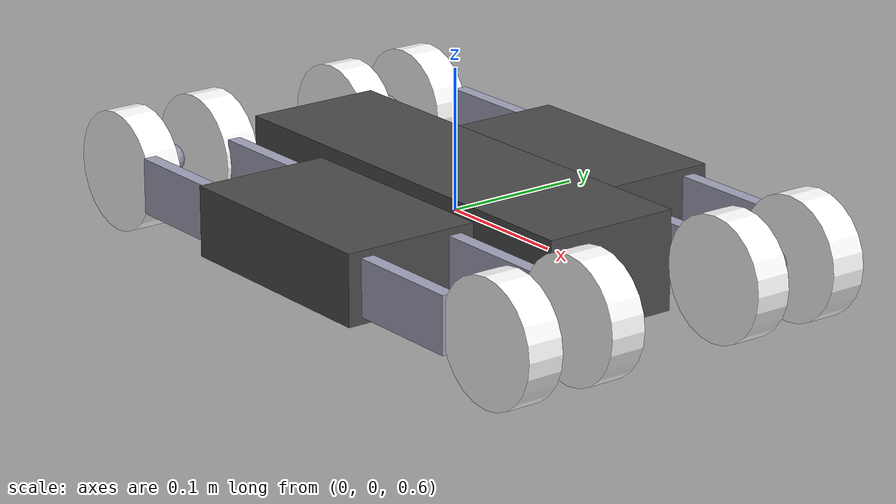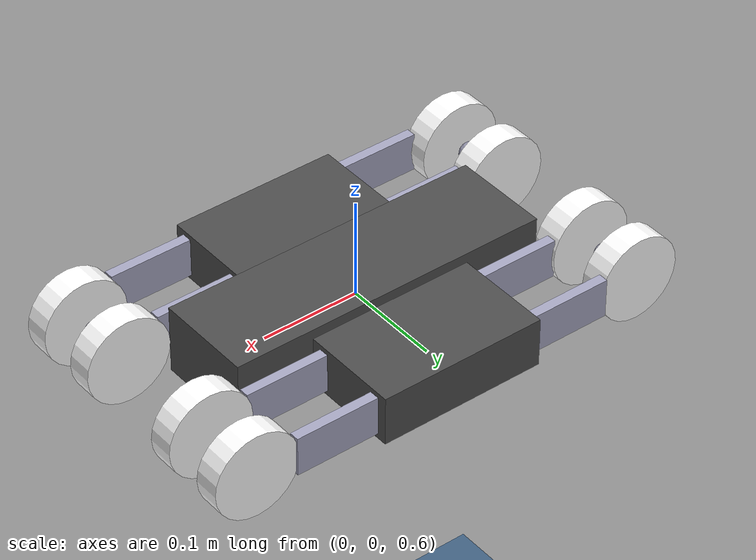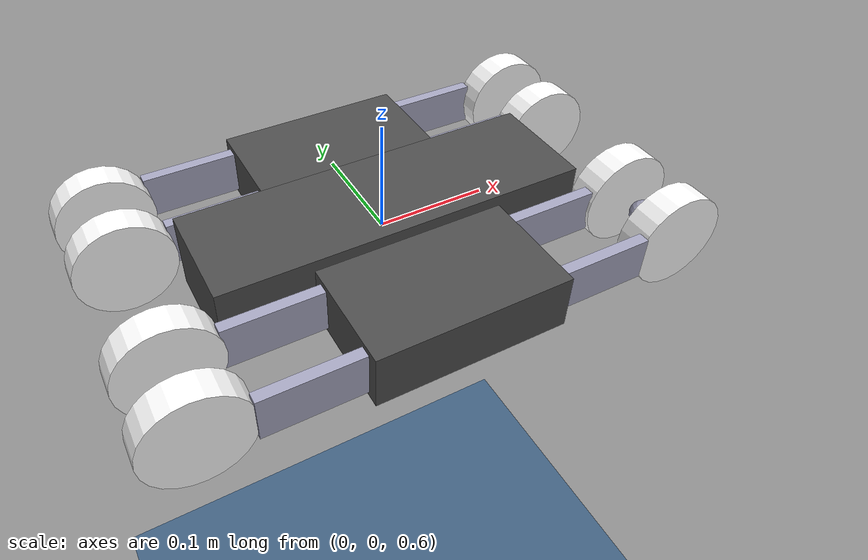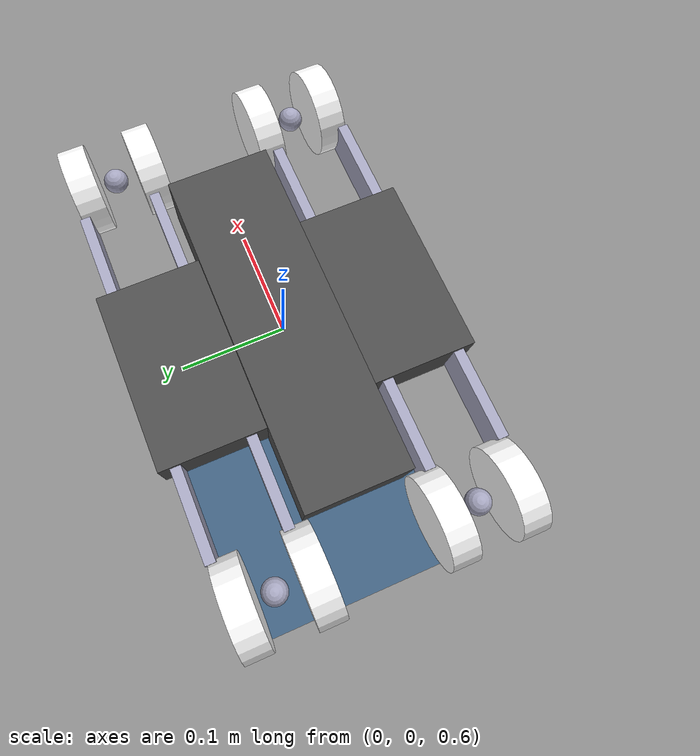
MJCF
<mujoco model='minitaur_run'>

    <option gravity='0 0 -9.81' timestep="0.005"/>

    <compiler angle='radian' />
    <size njmax='500' nconmax='100'/>

    <default>
    </default>

    <asset>
        <texture builtin="gradient" height="100" rgb1="1 1 1" rgb2="0.9 0.9 0.9" type="skybox" width="100"/>

        <texture name="texplane" type="2d" builtin="checker" rgb1=".4 .6 .8" rgb2=".1 0.15 0.2"
            width="512" height="512"/>
        <material name='MatPlane' reflectance='0.3' texture="texplane" texrepeat="1 1" texuniform="true"/>
    </asset>

    <worldbody>
        <light cutoff="100" diffuse="1 1 1" dir="-0 0 -1.3" directional="true" exponent="1" pos="0 0 1.3" specular=".1 .1 .1" castshadow="false"/>

        <geom name='floor' pos='0 0 0' size='20 10 .01' type='plane' material="MatPlane" condim='3' friction='1.6 0.005 0.0001'/>

        <include file='minitaur.xml'/>
    </worldbody>

    <actuator>
          <position kp='2' joint="motor_front_leftL_joint"   ctrlrange='-0.2 0.2' name="motor_front_leftL_joint"/>
          <position kp='2' joint="motor_back_leftL_joint"    ctrlrange='-0.2 0.2' name="motor_back_leftL_joint"/>
          <position kp='2' joint="motor_front_rightR_joint"  ctrlrange='-0.2 0.2' name="motor_front_rightR_joint"/>
          <position kp='2' joint="motor_back_rightR_joint"   ctrlrange='-0.2 0.2' name="motor_back_rightR_joint"/>

          <position kp='120' gear='1' joint="motor_front_leftL_extension"   ctrlrange='0.12 0.2' name="motor_front_leftL_extension"/>
          <position kp='120' gear='1' joint="motor_back_leftL_extension"    ctrlrange='0.12 0.2' name="motor_back_leftL_extension" />
          <position kp='120' gear='1' joint="motor_front_rightR_extension"  ctrlrange='0.12 0.2' name="motor_front_rightR_extension"/>
          <position kp='120' gear='1' joint="motor_back_rightR_extension"   ctrlrange='0.12 0.2' name="motor_back_rightR_extension"/>

    </actuator>

</mujoco>

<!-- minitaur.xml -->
<mujocoinclude>
    <body name="base_chassis_link" pos="0 0 0.6">
        <joint name="object:joint" type="free" damping="0.10"></joint>

        <inertial pos="0 0 0" mass="3.3" diaginertia="0.006837 0.027262 0.02987" />
        <geom size="0.165 0.05 0.035" type="box" rgba="0.3 0.3 0.3 1" />
        <geom size="0.085 0.05 0.025" pos="0 0.1 0" type="box" rgba="0.3 0.3 0.3 1" />
        <geom size="0.085 0.05 0.025" pos="0 -0.1 0" type="box" rgba="0.3 0.3 0.3 1" />

        <body name="chassis_right" pos="0 -0.1 0" quat="1 0 0 0">
            <inertial pos='0 0 0' mass='1.32' diaginertia='0.004147 0.040913 0.041840'/>
            <geom size="0.17 0.005 0.02" pos="0 0.035 0" type="box" rgba="0.65 0.65 0.75 1" />
            <geom size="0.17 0.005 0.02" pos="0 -0.035 0" type="box" rgba="0.65 0.65 0.75 1" />

            <body name="motor_front_rightR_link" pos="0.21 -0.025 0" >
                <inertial pos="0 0 0" mass="0.072" diaginertia="0.00011397 0.00021765 0.00011397" />
                <joint name="motor_front_rightR_joint" pos="0 0 0" axis="0 1 0" damping='0.03' limited='true' range='-0.5 0.5'/>
                <geom size="0.0434 0.013" type="cylinder" rgba="1 1 1 1" quat="0.7071067811865476 0.7071067811865476 0 0"/>
                <body name="upper_leg_front_rightR_link" pos="0 0.03 0" >
                    <inertial pos="0 0 0" mass="0.24" diaginertia="0.00032459 0.00032637 0.000002178" />
                    <joint name="motor_front_rightR_extension" type='slide' pos="0 0 0" axis="0 0 -1"
                                        limited='true' range='0.1 0.2' damping='0.1'/>
                    <geom size="0.012" type="sphere" rgba="0.65 0.65 0.75 1" />
                </body>
            </body>

            <body name="motor_front_rightL_link" pos="0.21 0.04 0">
                <inertial pos="0 0 0" mass="0.072" diaginertia="0.00011397 0.00021765 0.00011397" />
                <geom size="0.0434 0.013" type="cylinder" rgba="1 1 1 1"  quat="0.7071067811865476 0.7071067811865476 0 0"/>
            </body>

            <body name="motor_back_rightR_link" pos="-0.21 -0.025 0" >
                <inertial pos="0 0 0" mass="0.072" diaginertia="0.00011397 0.00021765 0.00011397" />
                <joint name="motor_back_rightR_joint" pos="0 0 0" axis="0 1 0" damping='0.03'  limited='true' range='-0.5 0.5'/>
                <geom size="0.0434 0.013" type="cylinder" rgba="1 1 1 1" quat="0.7071067811865476 0.7071067811865476 0 0"/>
                <body name="upper_leg_back_rightR_link" pos="0 0.03 0." >
                    <inertial pos="0 0 0" mass="0.24" diaginertia="0.00032459 0.00032637 0.000002178" />
                    <joint name="motor_back_rightR_extension" type='slide' pos="0 0 0" axis="0 0 -1"
                                    limited='true' range='0.1 0.2' damping='0.1'/>
                    <geom size="0.012" type="sphere" rgba="0.65 0.65 0.75 1" />
                </body>
            </body>

            <body name="motor_back_rightL_link" pos="-0.21 0.04 0" >
                <inertial pos="0 0 0" mass="0.072" diaginertia="0.00011397 0.00021765 0.00011397" />
                <geom size="0.0434 0.013" type="cylinder" rgba="1 1 1 1" quat="0.7071067811865476 0.7071067811865476 0 0"/>
            </body>

        </body>

        <body name="chassis_left" pos="0 0.1 0" quat="1 0 0 0">
            <inertial pos='0 0 0' mass='1.32' diaginertia='0.004147 0.040913 0.041840' />
            <geom size="0.17 0.005 0.02" pos="0 0.035 0" type="box" rgba="0.65 0.65 0.75 1" />
            <geom size="0.17 0.005 0.02" pos="0 -0.035 0" type="box" rgba="0.65 0.65 0.75 1" />

            <body name="motor_front_leftL_link" pos="0.21 0.025 0" >
                <inertial pos="0 0 0" mass="0.072" diaginertia="0.00011397 0.00021765 0.00011397" />
                <joint name="motor_front_leftL_joint" pos="0 0 0" axis="0 1 0" damping='0.03'  limited='true' range='-0.5 0.5'/>
                <geom size="0.0434 0.013" type="cylinder" rgba="1 1 1 1" quat="0.7071067811865476 0.7071067811865476 0 0"/>
                <body name="upper_leg_front_leftL_link" pos="0 -0.03 0" >
                    <inertial pos="0 0 0" mass="0.24" diaginertia="0.00032459 0.00032637 0.000002178" />
                    <joint name="motor_front_leftL_extension" type='slide' pos="0 0 0" axis="0 0 -1"
                                    limited='true' range='0.1 0.2' damping='0.1'/>
                    <geom size="0.012" type="sphere" rgba="0.65 0.65 0.75 1" />
                </body>
            </body>

            <body name="motor_front_leftR_link" pos="0.21 -0.04 0">
                <inertial pos="0 0 0" mass="0.072" diaginertia="0.00011397 0.00021765 0.00011397" />
                <geom size="0.0434 0.013" type="cylinder" rgba="1 1 1 1"  quat="0.7071067811865476 0.7071067811865476 0 0"/>
            </body>

            <body name="motor_back_leftL_link" pos="-0.21 0.025 0" >
                <inertial pos="0 0 0" mass="0.072" diaginertia="0.00011397 0.00021765 0.00011397" />

                <joint name="motor_back_leftL_joint" pos="0 0 0" axis="0 1 0" damping='0.03' limited='true' range='-0.5 0.5'/>
                <geom size="0.0434 0.013" type="cylinder" rgba="1 1 1 1" quat="0.7071067811865476 0.7071067811865476 0 0"/>
                <body name="upper_leg_back_leftL_link" pos="0 -0.03 0" >
                    <inertial pos="0 0 0" mass="0.24" diaginertia="0.00032459 0.00032637 0.000002178" />

                    <joint name="motor_back_leftL_extension" type='slide' pos="0 0 0" axis="0 0 -1"
                                    limited='true' range='0.1 0.2' damping='0.1'/>
                    <geom size="0.012" type="sphere" rgba="0.65 0.65 0.75 1" />
                </body>
            </body>

            <body name="motor_back_leftR_link" pos="-0.21 -0.04 0" >
                <inertial pos="0 0 0" mass="0.072" diaginertia="0.00011397 0.00021765 0.00011397" />
                <geom size="0.0434 0.013" type="cylinder" rgba="1 1 1 1" quat="0.7071067811865476 0.7071067811865476 0 0"/>
            </body>

        </body>
    </body>
</mujocoinclude>
